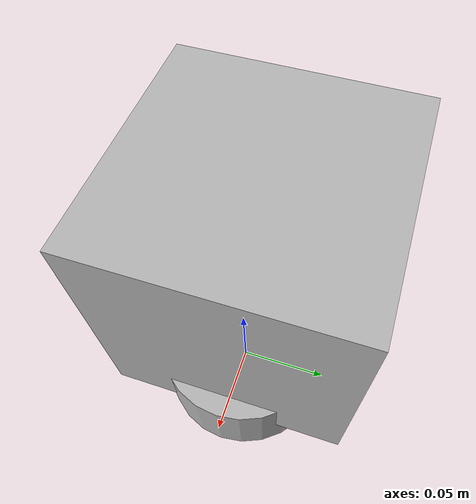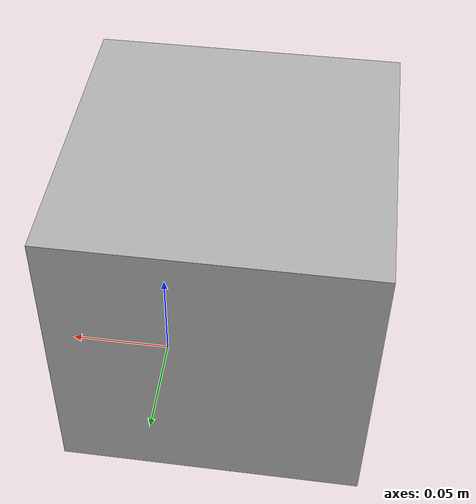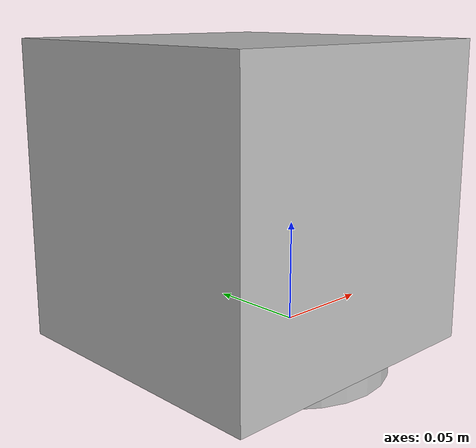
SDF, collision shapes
<?xml version="1.0" ?>
<sdf version="1.5">
  <model name="turtlebot3_burger_tb3_2">
    <pose>0.0 0.0 0.0 0.0 0.0 0.0</pose>
    <link name="base_footprint"/>
    <link name="base_link">
      <inertial>
        <pose>-0.032 0 0.070 0 0 0</pose>
        <inertia>
          <ixx>7.2397393e-01</ixx>
          <ixy>4.686399e-10</ixy>
          <ixz>-1.09525703e-08</ixz>
          <iyy>7.2397393e-01</iyy>
          <iyz>2.8582649e-09</iyz>
          <izz>6.53050163e-01</izz>
        </inertia>
        <mass>8.2573504e-01</mass>
      </inertial>
      <collision name="base_collision">
        <pose>-0.032 0 0.070 0 0 0</pose>
        <geometry>
          <box>
            <size>0.140 0.140 0.140</size>
          </box>
        </geometry>
      </collision>
      <visual name="base_visual">
        <pose>-0.032 0 0 0 0 0</pose>
        <geometry>
          <mesh>
            <uri>model://turtlebot3_burger_custom/meshes/burger_base.dae</uri>
            <scale>0.001 0.001 0.001</scale>
          </mesh>
        </geometry>
      </visual>
    </link>
    <link name="imu_link">
      <sensor name="tb3_imu" type="imu">
        <always_on>true</always_on>
        <update_rate>200</update_rate>
        <imu>
          <angular_velocity>
            <x>
              <noise type="gaussian">
                <mean>0.0</mean>
                <stddev>2e-4</stddev>
                <bias_mean>0.0000075</bias_mean>
                <bias_stddev>0.0000008</bias_stddev>
              </noise>
            </x>
            <y>
              <noise type="gaussian">
                <mean>0.0</mean>
                <stddev>2e-4</stddev>
                <bias_mean>0.0000075</bias_mean>
                <bias_stddev>0.0000008</bias_stddev>
              </noise>
            </y>
            <z>
              <noise type="gaussian">
                <mean>0.0</mean>
                <stddev>2e-4</stddev>
                <bias_mean>0.0000075</bias_mean>
                <bias_stddev>0.0000008</bias_stddev>
              </noise>
            </z>
          </angular_velocity>
          <linear_acceleration>
            <x>
              <noise type="gaussian">
                <mean>0.0</mean>
                <stddev>1.7e-2</stddev>
                <bias_mean>0.1</bias_mean>
                <bias_stddev>0.001</bias_stddev>
              </noise>
            </x>
            <y>
              <noise type="gaussian">
                <mean>0.0</mean>
                <stddev>1.7e-2</stddev>
                <bias_mean>0.1</bias_mean>
                <bias_stddev>0.001</bias_stddev>
              </noise>
            </y>
            <z>
              <noise type="gaussian">
                <mean>0.0</mean>
                <stddev>1.7e-2</stddev>
                <bias_mean>0.1</bias_mean>
                <bias_stddev>0.001</bias_stddev>
              </noise>
            </z>
          </linear_acceleration>
        </imu>
        <plugin name="turtlebot3_imu" filename="libgazebo_ros_imu_sensor.so">
          <ros>
            <namespace>/turtlebot3_2</namespace>
            <node_name>imu</node_name>
            <remapping>~/out:=imu</remapping>
          </ros>
        </plugin>
      </sensor>
    </link>
    <link name="base_scan">
      <inertial>
        <pose>0 0 0 0 0 0</pose>
        <inertia>
          <ixx>0.001</ixx>
          <iyy>0.001</iyy>
          <izz>0.001</izz>
        </inertia>
        <mass>0.1</mass>
      </inertial>
      <collision name="base_scan_collision">
        <pose>0 0 0 0 0 0</pose>
        <geometry>
          <cylinder>
            <radius>0.05</radius>
            <length>0.05</length>
          </cylinder>
        </geometry>
      </collision>
      <visual name="base_scan_visual">
        <pose>0 0 0 0 0 0</pose>
        <geometry>
          <cylinder>
            <radius>0.05</radius>
            <length>0.05</length>
          </cylinder>
        </geometry>
      </visual>
      <sensor name="tb3_lidar" type="ray">
        <pose>0 0 0.1 0 0 0</pose>
        <visualize>false</visualize>
        <update_rate>40</update_rate>
        <ray>
          <scan>
            <horizontal>
              <samples>360</samples>
              <resolution>1</resolution>
              <min_angle>0.0</min_angle>
              <max_angle>6.28319</max_angle>
            </horizontal>
          </scan>
          <range>
            <min>0.12</min>
            <max>3.5</max>
            <resolution>0.01</resolution>
          </range>
          <noise>
            <type>gaussian</type>
            <mean>0.0</mean>
            <stddev>0.01</stddev>
          </noise>
        </ray>
        <plugin name="turtlebot3_laserscan" filename="libgazebo_ros_ray_sensor.so">
          <ros>
            <namespace>/turtlebot3_2</namespace>
            <node_name>lidar</node_name>
            <remapping>~/out:=scan</remapping>
          </ros>
          <output_type>sensor_msgs/LaserScan</output_type>
          <frame_name>base_scan</frame_name>
        </plugin>
      </sensor>
    </link>
    <link name="wheel_left_link">
      <inertial>
        <pose>0 0 0 0 0 0</pose>
        <inertia>
          <ixx>0.0001</ixx>
          <iyy>0.0001</iyy>
          <izz>0.0001</izz>
        </inertia>
        <mass>0.1</mass>
      </inertial>
      <collision name="wheel_left_collision">
        <pose>0 0 0 0 0 0</pose>
        <geometry>
          <cylinder>
            <radius>0.033</radius>
            <length>0.018</length>
          </cylinder>
        </geometry>
      </collision>
      <visual name="wheel_left_visual">
        <pose>0 0 0 0 0 0</pose>
        <geometry>
          <cylinder>
            <radius>0.033</radius>
            <length>0.018</length>
          </cylinder>
        </geometry>
      </visual>
    </link>
    <link name="wheel_right_link">
      <inertial>
        <pose>0 0 0 0 0 0</pose>
        <inertia>
          <ixx>0.0001</ixx>
          <iyy>0.0001</iyy>
          <izz>0.0001</izz>
        </inertia>
        <mass>0.1</mass>
      </inertial>
      <collision name="wheel_right_collision">
        <pose>0 0 0 0 0 0</pose>
        <geometry>
          <cylinder>
            <radius>0.033</radius>
            <length>0.018</length>
          </cylinder>
        </geometry>
      </collision>
      <visual name="wheel_right_visual">
        <pose>0 0 0 0 0 0</pose>
        <geometry>
          <cylinder>
            <radius>0.033</radius>
            <length>0.018</length>
          </cylinder>
        </geometry>
      </visual>
    </link>
    <joint name="base_joint" type="fixed">
      <parent>base_footprint</parent>
      <child>base_link</child>
    </joint>
    <joint name="base_to_imu" type="fixed">
      <parent>base_link</parent>
      <child>imu_link</child>
    </joint>
    <joint name="base_to_base_scan" type="fixed">
      <parent>base_link</parent>
      <child>base_scan</child>
    </joint>
    <joint name="wheel_left_joint" type="continuous">
      <parent>base_link</parent>
      <child>wheel_left_link</child>
      <pose>0 0.08 0 0 0 0</pose>
      <axis>
        <xyz>0 0 1</xyz>
      </axis>
    </joint>
    <joint name="wheel_right_joint" type="continuous">
      <parent>base_link</parent>
      <child>wheel_right_link</child>
      <pose>0 -0.08 0 0 0 0</pose>
      <axis>
        <xyz>0 0 1</xyz>
      </axis>
    </joint>
    <plugin name="turtlebot3_diff_drive" filename="libgazebo_ros_diff_drive.so">
      <ros>
        <namespace>/turtlebot3_2</namespace>
        <node_name>diff_drive</node_name>
      </ros>
      <left_joint>wheel_left_joint</left_joint>
      <right_joint>wheel_right_joint</right_joint>
      <wheel_separation>0.160</wheel_separation>
      <wheel_diameter>0.066</wheel_diameter>
      <max_wheel_torque>20</max_wheel_torque>
      <max_wheel_acceleration>1.0</max_wheel_acceleration>
      <command_topic>cmd_vel</command_topic>
      <odometry_topic>odom</odometry_topic>
      <odometry_frame>odom</odometry_frame>
      <robot_base_frame>base_footprint</robot_base_frame>
    </plugin>
    <plugin name="turtlebot3_joint_state" filename="libgazebo_ros_joint_state_publisher.so">
      <ros>
        <namespace>/turtlebot3_2</namespace>
        <node_name>joint_state</node_name>
        <remapping>~/out:=joint_states</remapping>
      </ros>
      <update_rate>30</update_rate>
      <joint_name>wheel_left_joint</joint_name>
      <joint_name>wheel_right_joint</joint_name>
    </plugin>
  </model>
</sdf>
